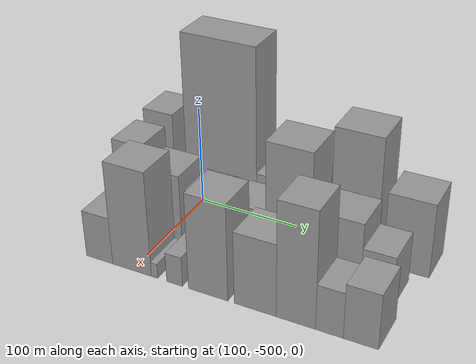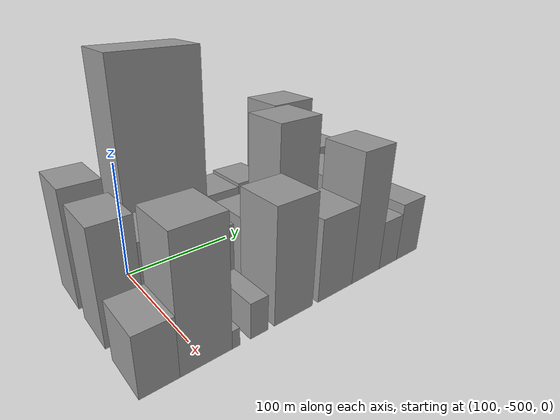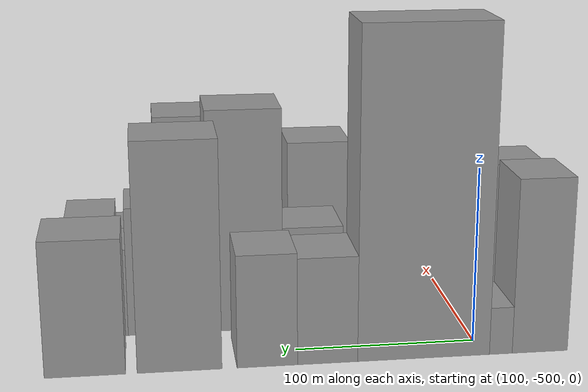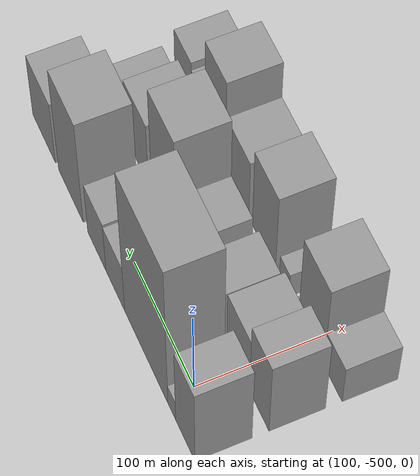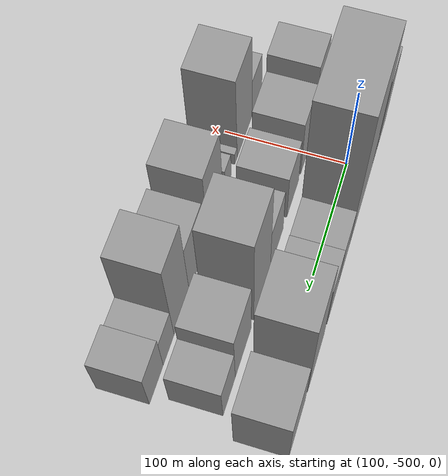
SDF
<sdf version="1.6">
 <world name="default">
  <model name="building_1">
   <static>1</static>
   <pose>100.0000 -532.3736 0 0.000000 0.000000 0.000000</pose>
   <link name="link">
    <pose>0 0 49.50 0 0 0</pose>
    <collision name="collision"><geometry><box><size>40.0000 31.2527 99.0000</size></box></geometry></collision>
    <visual name="visual">
     <cast_shadows>0</cast_shadows>
     <geometry><box><size>40.0000 31.2527 99.0000</size></box></geometry>
     <material>
      <script>
       <uri>model://grey_wall/materials/scripts</uri>
       <uri>model://grey_wall/materials/textures</uri>
       <name>vrc/grey_wall</name>
      </script>
     </material>
    </visual>
   </link>
  </model>
  <model name="building_2">
   <static>1</static>
   <pose>100.0000 -510.3500 0 0.000000 0.000000 0.000000</pose>
   <link name="link">
    <pose>0 0 13.50 0 0 0</pose>
    <collision name="collision"><geometry><box><size>40.0000 12.7945 27.0000</size></box></geometry></collision>
    <visual name="visual">
     <cast_shadows>0</cast_shadows>
     <geometry><box><size>40.0000 12.7945 27.0000</size></box></geometry>
     <material>
      <script>
       <uri>model://grey_wall/materials/scripts</uri>
       <uri>model://grey_wall/materials/textures</uri>
       <name>vrc/grey_wall</name>
      </script>
     </material>
    </visual>
   </link>
  </model>
  <model name="building_3">
   <static>1</static>
   <pose>100.0000 -467.4651 0 0.000000 0.000000 0.000000</pose>
   <link name="link">
    <pose>0 0 91.50 0 0 0</pose>
    <collision name="collision"><geometry><box><size>40.0000 72.9752 183.0000</size></box></geometry></collision>
    <visual name="visual">
     <cast_shadows>0</cast_shadows>
     <geometry><box><size>40.0000 72.9752 183.0000</size></box></geometry>
     <material>
      <script>
       <uri>model://grey_wall/materials/scripts</uri>
       <uri>model://grey_wall/materials/textures</uri>
       <name>vrc/grey_wall</name>
      </script>
     </material>
    </visual>
   </link>
  </model>
  <model name="building_4">
   <static>1</static>
   <pose>100.0000 -414.6393 0 0.000000 0.000000 0.000000</pose>
   <link name="link">
    <pose>0 0 30.00 0 0 0</pose>
    <collision name="collision"><geometry><box><size>40.0000 32.6765 60.0000</size></box></geometry></collision>
    <visual name="visual">
     <cast_shadows>0</cast_shadows>
     <geometry><box><size>40.0000 32.6765 60.0000</size></box></geometry>
     <material>
      <script>
       <uri>model://grey_wall/materials/scripts</uri>
       <uri>model://grey_wall/materials/textures</uri>
       <name>vrc/grey_wall</name>
      </script>
     </material>
    </visual>
   </link>
  </model>
  <model name="building_5">
   <static>1</static>
   <pose>100.0000 -382.0855 0 0.000000 0.000000 0.000000</pose>
   <link name="link">
    <pose>0 0 31.50 0 0 0</pose>
    <collision name="collision"><geometry><box><size>40.0000 32.4310 63.0000</size></box></geometry></collision>
    <visual name="visual">
     <cast_shadows>0</cast_shadows>
     <geometry><box><size>40.0000 32.4310 63.0000</size></box></geometry>
     <material>
      <script>
       <uri>model://grey_wall/materials/scripts</uri>
       <uri>model://grey_wall/materials/textures</uri>
       <name>vrc/grey_wall</name>
      </script>
     </material>
    </visual>
   </link>
  </model>
  <model name="building_6">
   <static>1</static>
   <pose>100.0000 -335.4556 0 0.000000 0.000000 0.000000</pose>
   <link name="link">
    <pose>0 0 63.00 0 0 0</pose>
    <collision name="collision"><geometry><box><size>40.0000 44.8287 126.0000</size></box></geometry></collision>
    <visual name="visual">
     <cast_shadows>0</cast_shadows>
     <geometry><box><size>40.0000 44.8287 126.0000</size></box></geometry>
     <material>
      <script>
       <uri>model://grey_wall/materials/scripts</uri>
       <uri>model://grey_wall/materials/textures</uri>
       <name>vrc/grey_wall</name>
      </script>
     </material>
    </visual>
   </link>
  </model>
  <model name="building_7">
   <static>1</static>
   <pose>100.0000 -285.9318 0 0.000000 0.000000 0.000000</pose>
   <link name="link">
    <pose>0 0 37.50 0 0 0</pose>
    <collision name="collision"><geometry><box><size>40.0000 42.2188 75.0000</size></box></geometry></collision>
    <visual name="visual">
     <cast_shadows>0</cast_shadows>
     <geometry><box><size>40.0000 42.2188 75.0000</size></box></geometry>
     <material>
      <script>
       <uri>model://grey_wall/materials/scripts</uri>
       <uri>model://grey_wall/materials/textures</uri>
       <name>vrc/grey_wall</name>
      </script>
     </material>
    </visual>
   </link>
  </model>
  <model name="building_31">
   <static>1</static>
   <pose>152.0000 -532.7235 0 0.000000 0.000000 0.000000</pose>
   <link name="link">
    <pose>0 0 46.50 0 0 0</pose>
    <collision name="collision"><geometry><box><size>40.0000 30.5529 93.0000</size></box></geometry></collision>
    <visual name="visual">
     <cast_shadows>0</cast_shadows>
     <geometry><box><size>40.0000 30.5529 93.0000</size></box></geometry>
     <material>
      <script>
       <uri>model://grey_wall/materials/scripts</uri>
       <uri>model://grey_wall/materials/textures</uri>
       <name>vrc/grey_wall</name>
      </script>
     </material>
    </visual>
   </link>
  </model>
  <model name="building_32">
   <static>1</static>
   <pose>152.0000 -499.0057 0 0.000000 0.000000 0.000000</pose>
   <link name="link">
    <pose>0 0 36.00 0 0 0</pose>
    <collision name="collision"><geometry><box><size>40.0000 36.8827 72.0000</size></box></geometry></collision>
    <visual name="visual">
     <cast_shadows>0</cast_shadows>
     <geometry><box><size>40.0000 36.8827 72.0000</size></box></geometry>
     <material>
      <script>
       <uri>model://grey_wall/materials/scripts</uri>
       <uri>model://grey_wall/materials/textures</uri>
       <name>vrc/grey_wall</name>
      </script>
     </material>
    </visual>
   </link>
  </model>
  <model name="building_33">
   <static>1</static>
   <pose>152.0000 -457.7530 0 0.000000 0.000000 0.000000</pose>
   <link name="link">
    <pose>0 0 30.00 0 0 0</pose>
    <collision name="collision"><geometry><box><size>40.0000 33.6228 60.0000</size></box></geometry></collision>
    <visual name="visual">
     <cast_shadows>0</cast_shadows>
     <geometry><box><size>40.0000 33.6228 60.0000</size></box></geometry>
     <material>
      <script>
       <uri>model://grey_wall/materials/scripts</uri>
       <uri>model://grey_wall/materials/textures</uri>
       <name>vrc/grey_wall</name>
      </script>
     </material>
    </visual>
   </link>
  </model>
  <model name="building_34">
   <static>1</static>
   <pose>152.0000 -413.5753 0 0.000000 0.000000 0.000000</pose>
   <link name="link">
    <pose>0 0 30.00 0 0 0</pose>
    <collision name="collision"><geometry><box><size>40.0000 34.7326 60.0000</size></box></geometry></collision>
    <visual name="visual">
     <cast_shadows>0</cast_shadows>
     <geometry><box><size>40.0000 34.7326 60.0000</size></box></geometry>
     <material>
      <script>
       <uri>model://grey_wall/materials/scripts</uri>
       <uri>model://grey_wall/materials/textures</uri>
       <name>vrc/grey_wall</name>
      </script>
     </material>
    </visual>
   </link>
  </model>
  <model name="building_35">
   <static>1</static>
   <pose>152.0000 -374.9144 0 0.000000 0.000000 0.000000</pose>
   <link name="link">
    <pose>0 0 64.50 0 0 0</pose>
    <collision name="collision"><geometry><box><size>40.0000 42.5892 129.0000</size></box></geometry></collision>
    <visual name="visual">
     <cast_shadows>0</cast_shadows>
     <geometry><box><size>40.0000 42.5892 129.0000</size></box></geometry>
     <material>
      <script>
       <uri>model://grey_wall/materials/scripts</uri>
       <uri>model://grey_wall/materials/textures</uri>
       <name>vrc/grey_wall</name>
      </script>
     </material>
    </visual>
   </link>
  </model>
  <model name="building_36">
   <static>1</static>
   <pose>152.0000 -327.9441 0 0.000000 0.000000 0.000000</pose>
   <link name="link">
    <pose>0 0 37.50 0 0 0</pose>
    <collision name="collision"><geometry><box><size>40.0000 39.3512 75.0000</size></box></geometry></collision>
    <visual name="visual">
     <cast_shadows>0</cast_shadows>
     <geometry><box><size>40.0000 39.3512 75.0000</size></box></geometry>
     <material>
      <script>
       <uri>model://grey_wall/materials/scripts</uri>
       <uri>model://grey_wall/materials/textures</uri>
       <name>vrc/grey_wall</name>
      </script>
     </material>
    </visual>
   </link>
  </model>
  <model name="building_37">
   <static>1</static>
   <pose>152.0000 -293.8470 0 0.000000 0.000000 0.000000</pose>
   <link name="link">
    <pose>0 0 25.50 0 0 0</pose>
    <collision name="collision"><geometry><box><size>40.0000 28.8431 51.0000</size></box></geometry></collision>
    <visual name="visual">
     <cast_shadows>0</cast_shadows>
     <geometry><box><size>40.0000 28.8431 51.0000</size></box></geometry>
     <material>
      <script>
       <uri>model://grey_wall/materials/scripts</uri>
       <uri>model://grey_wall/materials/textures</uri>
       <name>vrc/grey_wall</name>
      </script>
     </material>
    </visual>
   </link>
  </model>
  <model name="building_63">
   <static>1</static>
   <pose>204.0000 -534.0941 0 0.000000 0.000000 0.000000</pose>
   <link name="link">
    <pose>0 0 24.00 0 0 0</pose>
    <collision name="collision"><geometry><box><size>40.0000 27.8117 48.0000</size></box></geometry></collision>
    <visual name="visual">
     <cast_shadows>0</cast_shadows>
     <geometry><box><size>40.0000 27.8117 48.0000</size></box></geometry>
     <material>
      <script>
       <uri>model://grey_wall/materials/scripts</uri>
       <uri>model://grey_wall/materials/textures</uri>
       <name>vrc/grey_wall</name>
      </script>
     </material>
    </visual>
   </link>
  </model>
  <model name="building_64">
   <static>1</static>
   <pose>204.0000 -500.2130 0 0.000000 0.000000 0.000000</pose>
   <link name="link">
    <pose>0 0 52.50 0 0 0</pose>
    <collision name="collision"><geometry><box><size>40.0000 39.9505 105.0000</size></box></geometry></collision>
    <visual name="visual">
     <cast_shadows>0</cast_shadows>
     <geometry><box><size>40.0000 39.9505 105.0000</size></box></geometry>
     <material>
      <script>
       <uri>model://grey_wall/materials/scripts</uri>
       <uri>model://grey_wall/materials/textures</uri>
       <name>vrc/grey_wall</name>
      </script>
     </material>
    </visual>
   </link>
  </model>
  <model name="building_65">
   <static>1</static>
   <pose>204.0000 -477.0245 0 0.000000 0.000000 0.000000</pose>
   <link name="link">
    <pose>0 0 7.50 0 0 0</pose>
    <collision name="collision"><geometry><box><size>40.0000 6.4266 15.0000</size></box></geometry></collision>
    <visual name="visual">
     <cast_shadows>0</cast_shadows>
     <geometry><box><size>40.0000 6.4266 15.0000</size></box></geometry>
     <material>
      <script>
       <uri>model://grey_wall/materials/scripts</uri>
       <uri>model://grey_wall/materials/textures</uri>
       <name>vrc/grey_wall</name>
      </script>
     </material>
    </visual>
   </link>
  </model>
  <model name="building_66">
   <static>1</static>
   <pose>204.0000 -457.0203 0 0.000000 0.000000 0.000000</pose>
   <link name="link">
    <pose>0 0 15.00 0 0 0</pose>
    <collision name="collision"><geometry><box><size>40.0000 15.5818 30.0000</size></box></geometry></collision>
    <visual name="visual">
     <cast_shadows>0</cast_shadows>
     <geometry><box><size>40.0000 15.5818 30.0000</size></box></geometry>
     <material>
      <script>
       <uri>model://grey_wall/materials/scripts</uri>
       <uri>model://grey_wall/materials/textures</uri>
       <name>vrc/grey_wall</name>
      </script>
     </material>
    </visual>
   </link>
  </model>
  <model name="building_67">
   <static>1</static>
   <pose>204.0000 -424.3223 0 0.000000 0.000000 0.000000</pose>
   <link name="link">
    <pose>0 0 48.00 0 0 0</pose>
    <collision name="collision"><geometry><box><size>40.0000 37.8143 96.0000</size></box></geometry></collision>
    <visual name="visual">
     <cast_shadows>0</cast_shadows>
     <geometry><box><size>40.0000 37.8143 96.0000</size></box></geometry>
     <material>
      <script>
       <uri>model://grey_wall/materials/scripts</uri>
       <uri>model://grey_wall/materials/textures</uri>
       <name>vrc/grey_wall</name>
      </script>
     </material>
    </visual>
   </link>
  </model>
  <model name="building_68">
   <static>1</static>
   <pose>204.0000 -380.1572 0 0.000000 0.000000 0.000000</pose>
   <link name="link">
    <pose>0 0 36.00 0 0 0</pose>
    <collision name="collision"><geometry><box><size>40.0000 38.5158 72.0000</size></box></geometry></collision>
    <visual name="visual">
     <cast_shadows>0</cast_shadows>
     <geometry><box><size>40.0000 38.5158 72.0000</size></box></geometry>
     <material>
      <script>
       <uri>model://grey_wall/materials/scripts</uri>
       <uri>model://grey_wall/materials/textures</uri>
       <name>vrc/grey_wall</name>
      </script>
     </material>
    </visual>
   </link>
  </model>
  <model name="building_69">
   <static>1</static>
   <pose>204.0000 -343.4152 0 0.000000 0.000000 0.000000</pose>
   <link name="link">
    <pose>0 0 57.00 0 0 0</pose>
    <collision name="collision"><geometry><box><size>40.0000 34.9683 114.0000</size></box></geometry></collision>
    <visual name="visual">
     <cast_shadows>0</cast_shadows>
     <geometry><box><size>40.0000 34.9683 114.0000</size></box></geometry>
     <material>
      <script>
       <uri>model://grey_wall/materials/scripts</uri>
       <uri>model://grey_wall/materials/textures</uri>
       <name>vrc/grey_wall</name>
      </script>
     </material>
    </visual>
   </link>
  </model>
  <model name="building_70">
   <static>1</static>
   <pose>204.0000 -313.9089 0 0.000000 0.000000 0.000000</pose>
   <link name="link">
    <pose>0 0 22.50 0 0 0</pose>
    <collision name="collision"><geometry><box><size>40.0000 24.0444 45.0000</size></box></geometry></collision>
    <visual name="visual">
     <cast_shadows>0</cast_shadows>
     <geometry><box><size>40.0000 24.0444 45.0000</size></box></geometry>
     <material>
      <script>
       <uri>model://grey_wall/materials/scripts</uri>
       <uri>model://grey_wall/materials/textures</uri>
       <name>vrc/grey_wall</name>
      </script>
     </material>
    </visual>
   </link>
  </model>
  <model name="building_71">
   <static>1</static>
   <pose>204.0000 -287.0446 0 0.000000 0.000000 0.000000</pose>
   <link name="link">
    <pose>0 0 27.00 0 0 0</pose>
    <collision name="collision"><geometry><box><size>40.0000 29.6842 54.0000</size></box></geometry></collision>
    <visual name="visual">
     <cast_shadows>0</cast_shadows>
     <geometry><box><size>40.0000 29.6842 54.0000</size></box></geometry>
     <material>
      <script>
       <uri>model://grey_wall/materials/scripts</uri>
       <uri>model://grey_wall/materials/textures</uri>
       <name>vrc/grey_wall</name>
      </script>
     </material>
    </visual>
   </link>
  </model>
 </world>
</sdf>
